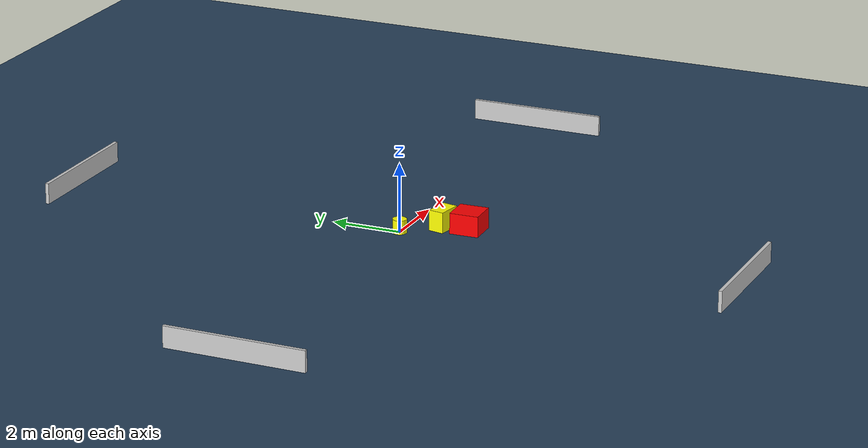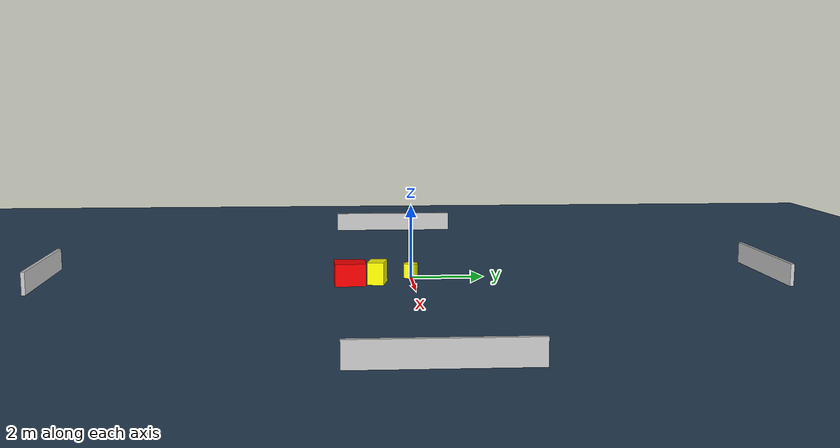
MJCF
<?xml version="1.0" ?>
<mujoco model="generated_environment">
  <option timestep="0.01" integrator="RK4" cone="elliptic"/>
  <default>
    <geom density="1"/>
  </default>
  <asset>
    <texture builtin="gradient" height="3072" name="skybox" rgb1="0.3 0.5 0.7" rgb2="0 0 0" type="skybox" width="512"/>
    <texture builtin="checker" height="300" name="groundplane" rgb1="0.2 0.3 0.4" rgb2="0.1 0.2 0.3" type="2d" width="300"/>
    <material name="groundplane" reflectance="0.2" texrepeat="5 5" texture="groundplane"/>
  </asset>
  <worldbody>
    <light dir="0 0 -1" directional="true" pos="0 0 1.5"/>
    <geom condim="3" friction="0.5 0.005 0.001" material="groundplane" name="floor" pos="0 0 0" size="0 0 0.05" type="plane"/>
    <body name="walls">
      <geom name="wall_1" condim="4" pos="-10.0 0.0 0.3" rgba="0.800000011920929 0.800000011920929 0.800000011920929 1.0" size="0.05 2.0 0.3" type="box"/>
      <geom name="wall_2" condim="4" pos="10.0 0.0 0.3" rgba="0.800000011920929 0.800000011920929 0.800000011920929 1.0" size="0.05 2.0 0.3" type="box"/>
      <geom name="wall_3" condim="4" pos="0.0 -10.0 0.3" rgba="0.800000011920929 0.800000011920929 0.800000011920929 1.0" size="2.0 0.05 0.3" type="box"/>
      <geom name="wall_4" condim="4" pos="0.0 10.0 0.3" rgba="0.800000011920929 0.800000011920929 0.800000011920929 1.0" size="2.0 0.05 0.3" type="box"/>
    </body>
    <body name="robot">
      <joint name="joint_x" type="slide" pos="0 0 0" axis="1 0 0"/>
      <joint name="joint_y" type="slide" pos="0 0 0" axis="0 1 0"/>
      <geom name="robot" type="cylinder" pos="0.0 0.0 0.2" size="0.2 0.2 0.0" mass="5.0" friction="1.0 0.005 0.0001" condim="4" rgba="1.0 1.0 0.0 1.0"/>
    </body>
    <body name="obstacle_1_movable">
      <geom name="obstacle_1_movable" condim="4" pos="0.7910006124646538 -0.9526926579179124 0.3" euler="0 0 169.6868892794197" friction="0.0 0.005 0.001" rgba="1.0 1.0 0.0 1.0" size="0.35597770718162125 0.2229131017606157 0.3" type="box" mass="0.1"/>
      <joint type="free"/>
    </body>
    <body name="obstacle_2_static">
      <geom name="obstacle_2_static" condim="4" pos="0.8949928127896636 -1.69269133032568 0.3" euler="0 0 181.85297227936957" friction="0.0 0.005 0.001" rgba="1.0 0.0 0.0 1.0" size="0.4142244767308383 0.4159036292905521 0.3" type="box"/>
    </body>
  </worldbody>
  <actuator>
    <motor name="actuator_x" joint="joint_x" gear="1" ctrlrange="-1 1"/>
    <motor name="actuator_y" joint="joint_y" gear="1" ctrlrange="-1 1"/>
  </actuator>
</mujoco>
